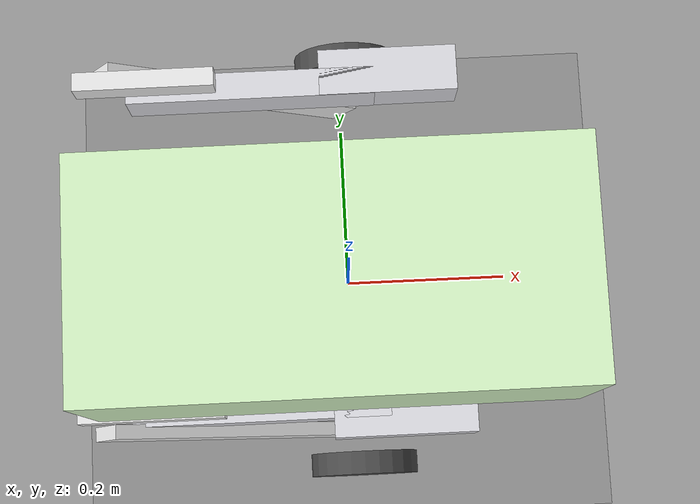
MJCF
<mujoco model="wheelbipe_V14_mjcf_aligned_urdf">
  <compiler angle="radian"/>

  <worldbody>
  <geom name="floor" type="plane" size="10 10 0.1" friction="1.0"/>
        <geom size="0.27 0.15 0.115" pos="0 0 -0.03" type="box" rgba="0.866667 0.866667 0.890196 1"/>
      <body name="base_link" pos="0 0 0.30">
      <freejoint name="floating_base"/>
        <inertial pos="0.00272 0.0003 -0.01317" mass="15.301" fullinertia="0.2207473 0.2781394 0.3837124 -0.0018843 0.0097564 -0.0000157"/>
      <body name="gimbal_yaw_link" pos="0 2.91038e-11 0.05495">
      <inertial pos="-0.0372174 -0.0261124 0.0832093" quat="-0.0206868 0.842283 0.341689 0.41639" mass="1.53579" diaginertia="0.0102473 0.0078773 0.00456992"/>
      <joint name="gimbal_yaw_joint"/>
      <body name="gimbal_pitch_link" pos="-0.0190834 -0.0781947 0.18">
        <inertial pos="0.019 0.02 0.026" quat="0.387825 0.694236 0.143434 0.589114" mass="2.444" diaginertia="0.0251913 0.0234487 0.0103265"/>
        <joint name="gimbal_pitch_joint" axis="0.0426941 0.999088 0"/>
        <geom size="0.23 0.11 0.09" type="box" rgba="0.847059 0.972549 0.780392 1"/>
      </body>
    </body>
    <body name="left_front1_link" pos="0 0.1845 -2.38419e-08">
      <inertial pos="0.0319413 0.00303813 -0.00504969" quat="0.444151 0.52462 0.550209 0.474104" mass="0.104902" diaginertia="0.000243003 0.000218691 3.12148e-05"/>
      <joint name="left_front1_joint" range="-3.14 3.14" actuatorfrcrange="-40 40" axis="0 1 0"/>
      <geom size="0.075 0.025 0.025" pos="0.05 0 0" type="box" rgba="0.866667 0.866667 0.890196 1"/>
      <body name="left_front2_link" pos="0.112659 -0.00950009 0.0129657">
        <inertial pos="-0.0592416 -0.00441124 -0.0323525" quat="0.608132 0.360799 0.360799 0.608132" mass="0.0393656" diaginertia="8.99709e-05 8.89177e-05 1.67563e-06"/>
        <joint name="left_front2_joint" axis="0 1 0"/>
        <body name="left_front3_link" pos="-0.10887 0.00649988 -0.0798999">
          <inertial pos="-0.0790697 0.003 0.0650625" quat="0.291021 0.644443 0.644443 0.291021" mass="0.035715" diaginertia="0.000147976 0.00014543 2.76039e-06"/>
          <joint name="left_front3_joint" axis="0 1 0"/>
          <body name="left_front4_link" pos="-0.164991 -0.00650013 0.114102">
            <inertial pos="-0.0482977 -0.00448784 0" quat="0.499786 0.499786 0.500214 0.500214" mass="0.0294239" diaginertia="3.94413e-05 3.85942e-05 1.31889e-06"/>
            <joint name="left_front4_joint" axis="0 1 0"/>
            <geom size="0.075 0.01 0.015" pos="-0.05 0 0" type="box" rgba="0.929412 0.929412 0.929412 1"/>
          </body>
        </body>
      </body>
    </body>
    <body name="left_rear1_link" pos="0 0.174 -2.38419e-08">
      <inertial pos="-0.0924068 -0.00509079 -0.000249942" quat="0.492996 0.50627 0.503536 0.497088" mass="0.289964" diaginertia="0.00167502 0.00156976 0.000112022"/>
      <joint name="left_rear1_joint" range="-3.14 3.14" actuatorfrcrange="-40 40" axis="0 1 0"/>
      <geom size="0.135 0.015 0.025" pos="-0.1 0 0" type="box" rgba="0.866667 0.866667 0.890196 1"/>
      <body name="left_rear2_link" pos="-0.21 0.0144999 3.06637e-06">
        <inertial pos="0.0989375 0.00771452 -0.0787794" quat="0.310209 0.633184 0.640741 0.303808" mass="0.286715" diaginertia="0.00246901 0.00238333 9.55545e-05"/>
        <joint name="left_rear2_joint" range="-0.05 1.05" actuatorfrcrange="-40 40" axis="0 1 0"/>
        <geom size="0.16 0.0075 0.025" pos="0.08 0.005 -0.065" quat="0.958244 0 0.285952 0" type="box" rgba="0.929412 0.929412 0.929412 1"/>
        <body name="left_wheel_link" pos="0.216608 0.03355 -0.12483">
          <inertial pos="-1.97308e-05 0.0106477 -2.60157e-05" quat="0.316567 0.632355 0.632174 0.316653" mass="0.365939" diaginertia="0.000613576 0.000318187 0.000318031"/>
          <joint name="left_wheel_joint" actuatorfrcrange="-10 10" axis="0 1 0"/>
          <geom size="0.06 0.0125" pos="0 0.012 0" quat="0.707106 0.707108 0 0" type="cylinder" rgba="0.298039 0.298039 0.298039 1"/>
        </body>
      </body>
      <body name="left_spring1_link" pos="0.00235445 -0.00200007 -0.0449381">
        <inertial pos="-0.0411116 0.00032883 0.00256147" quat="0.483146 0.514317 0.516304 0.48526" mass="0.0282731" diaginertia="1.50304e-05 1.49466e-05 3.42159e-07"/>
        <joint name="left_spring1_joint" axis="0 1 0"/>
        <body name="left_spring2_link" pos="-0.0329506 -0.00550007 0.00440263" quat="0.999516 0 0.0311075 0">
          <inertial pos="0.0627039 0.00016644 0" quat="0.500205 0.500205 0.499795 0.499795" mass="0.0867952" diaginertia="8.95146e-05 8.93439e-05 2.25676e-06"/>
          <joint name="left_spring2_joint" type="slide" range="-0.01 0.06" actuatorfrcrange="-1000 1000" axis="-1 0 0"/>
        </body>
      </body>
    </body>
    <body name="right_front1_link" pos="0 -0.1845 -2.38419e-08">
      <inertial pos="0.0319413 -0.00303813 -0.00504969" quat="0.474104 0.550209 0.52462 0.444151" mass="0.104902" diaginertia="0.000243003 0.000218691 3.12148e-05"/>
      <joint name="right_front1_joint" range="-3.14 3.14" actuatorfrcrange="-40 40" axis="0 1 0"/>
      <geom size="0.075 0.025 0.025" pos="0.05 0 0" type="box" rgba="0.866667 0.866667 0.890196 1"/>
      <body name="right_front2_link" pos="0.112659 0.00950007 0.0129657">
        <inertial pos="-0.0592416 0.00441126 -0.0323525" quat="0.608132 0.360799 0.360799 0.608132" mass="0.0393656" diaginertia="8.99709e-05 8.89177e-05 1.67563e-06"/>
        <joint name="right_front2_joint" axis="0 1 0"/>
        <body name="right_front3_link" pos="-0.10887 -0.00649991 -0.0798999">
          <inertial pos="-0.0790697 -0.00300001 0.0650625" quat="0.291021 0.644443 0.644443 0.291021" mass="0.035715" diaginertia="0.000147976 0.00014543 2.76039e-06"/>
          <joint name="right_front3_joint" axis="0 1 0"/>
          <body name="right_front4_link" pos="-0.164991 0.0065001 0.114102">
            <inertial pos="-0.0482977 0.00448784 0" quat="0.500214 0.500214 0.499786 0.499786" mass="0.0294239" diaginertia="3.94413e-05 3.85942e-05 1.31889e-06"/>
            <joint name="right_front4_joint" axis="0 1 0"/>
            <geom size="0.075 0.01 0.015" pos="-0.05 0 0" type="box" rgba="0.929412 0.929412 0.929412 1"/>
          </body>
        </body>
      </body>
    </body>
    <body name="right_rear1_link" pos="0 -0.174 -2.38419e-08">
      <inertial pos="-0.0924068 0.00509077 -0.000249942" quat="0.497088 0.503536 0.50627 0.492996" mass="0.289964" diaginertia="0.00167502 0.00156976 0.000112022"/>
      <joint name="right_rear1_joint" range="-3.14 3.14" actuatorfrcrange="-40 40" axis="0 1 0"/>
      <geom size="0.135 0.015 0.025" pos="-0.1 0 0" type="box" rgba="0.866667 0.866667 0.890196 1"/>
      <body name="right_rear2_link" pos="-0.21 -0.0144999 2.75494e-06">
        <inertial pos="0.0989605 -0.00771453 -0.0787918" quat="0.30381 0.640764 0.633153 0.310223" mass="0.286715" diaginertia="0.00246901 0.00238331 9.55761e-05"/>
        <joint name="right_rear2_joint" range="-0.05 1.05" actuatorfrcrange="-40 40" axis="0 1 0"/>
        <geom size="0.16 0.0075 0.025" pos="0.08 -0.005 -0.065" quat="0.958244 0 0.285952 0" type="box" rgba="0.929412 0.929412 0.929412 1"/>
        <body name="right_wheel_link" pos="0.216608 -0.0335499 -0.12483">
          <inertial pos="-1.39538e-05 -0.0115298 -3.3351e-05" quat="0.390102 0.589717 0.589889 0.389983" mass="0.330449" diaginertia="0.000589141 0.000305857 0.000305701"/>
          <joint name="right_wheel_joint" actuatorfrcrange="-10 10" axis="0 1 0"/>
          <geom size="0.06 0.0125" pos="0 -0.012 0" quat="0.707106 0.707108 0 0" type="cylinder" rgba="0.298039 0.298039 0.298039 1"/>
        </body>
      </body>
      <body name="right_spring1_link" pos="0.00235452 0.00195011 -0.0449384">
        <inertial pos="-0.0411116 -0.000328822 0.00256146" quat="0.48526 0.516304 0.514317 0.483146" mass="0.0282731" diaginertia="1.50304e-05 1.49466e-05 3.42159e-07"/>
        <joint name="right_spring1_joint" axis="0 1 0"/>
        <body name="right_spring2_link" pos="-0.0329505 0.0055001 0.00440258" quat="0.999516 0 0.0311075 0">
          <inertial pos="0.0627039 -0.000166441 0" quat="0.499795 0.499795 0.500205 0.500205" mass="0.0867952" diaginertia="8.95146e-05 8.93439e-05 2.25676e-06"/>
          <joint name="right_spring2_joint" type="slide" range="-0.01 0.06" actuatorfrcrange="-1000 1000" axis="-1 0 0"/>
        </body>
      </body>
    </body>
        </body>
  </worldbody>
<actuator><motor name="left_front1_joint" joint="left_front1_joint" ctrlrange="-40 40" gear="1"/><motor name="right_front1_joint" joint="right_front1_joint" ctrlrange="-40 40" gear="1"/><motor name="left_rear1_joint" joint="left_rear1_joint" ctrlrange="-40 40" gear="1"/><motor name="right_rear1_joint" joint="right_rear1_joint" ctrlrange="-40 40" gear="1"/><motor name="left_wheel_joint" joint="left_wheel_joint" ctrlrange="-5 5" gear="1"/><motor name="right_wheel_joint" joint="right_wheel_joint" ctrlrange="-5 5" gear="1"/><motor name="gimbal_yaw_joint_ctrl" joint="gimbal_yaw_joint" ctrlrange="-2 2" gear="1"/>
</actuator>
</mujoco>
